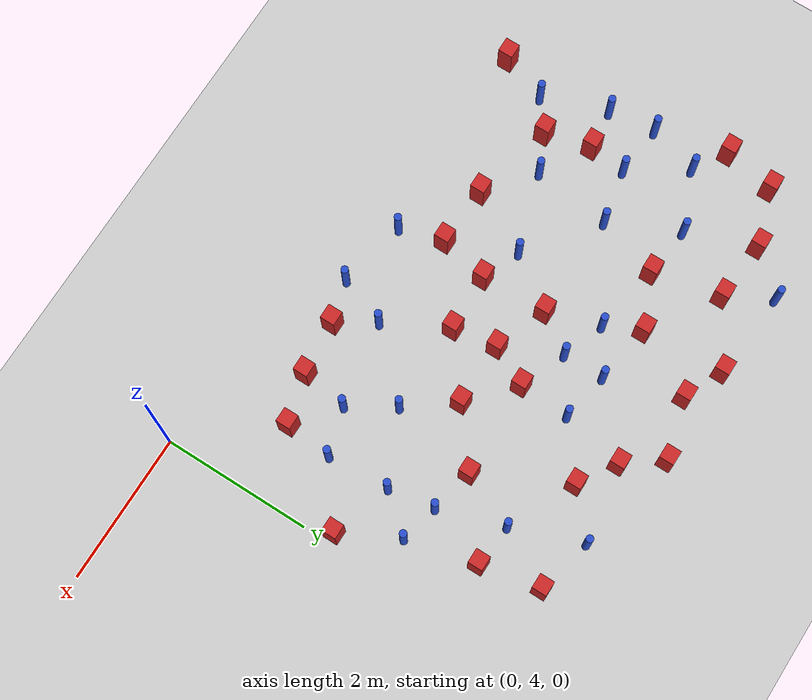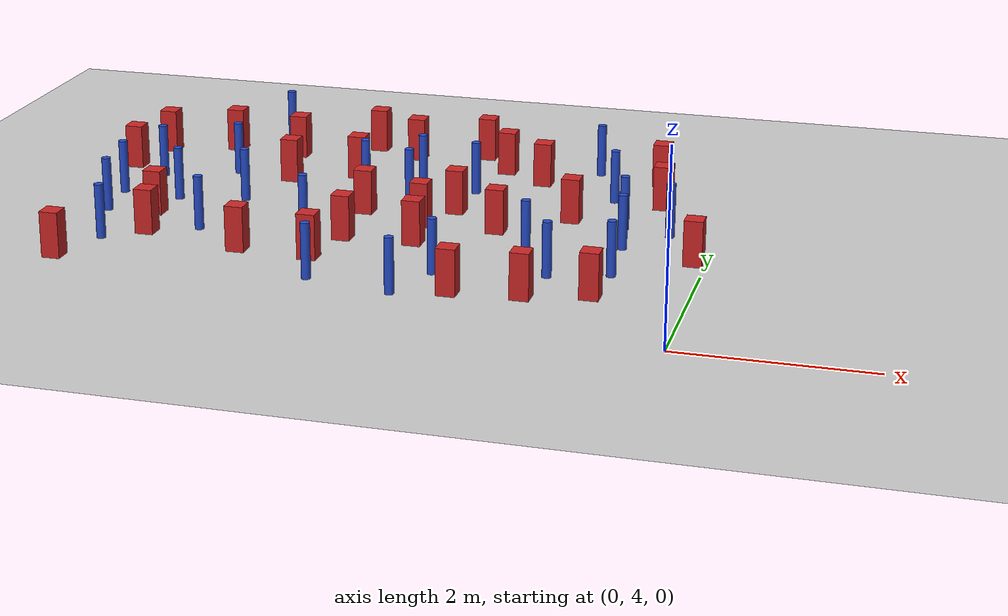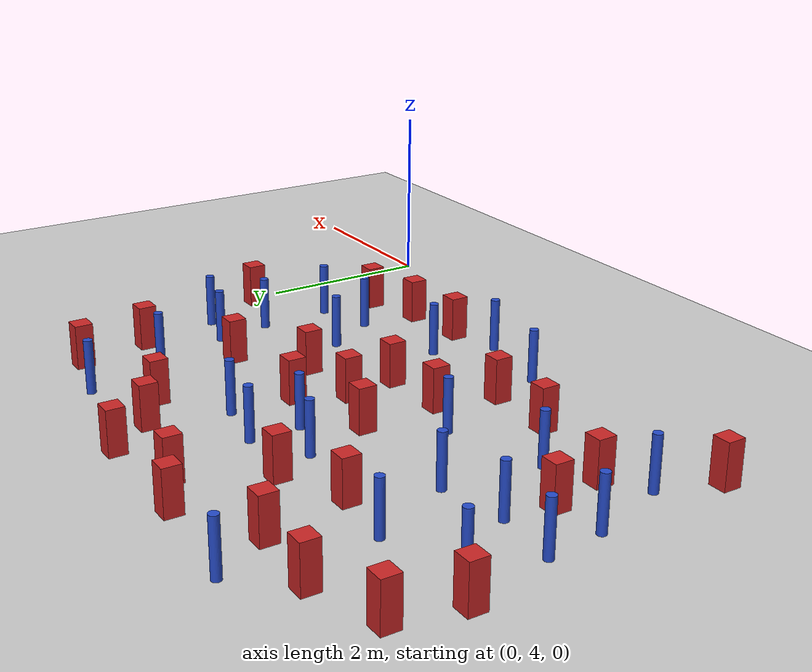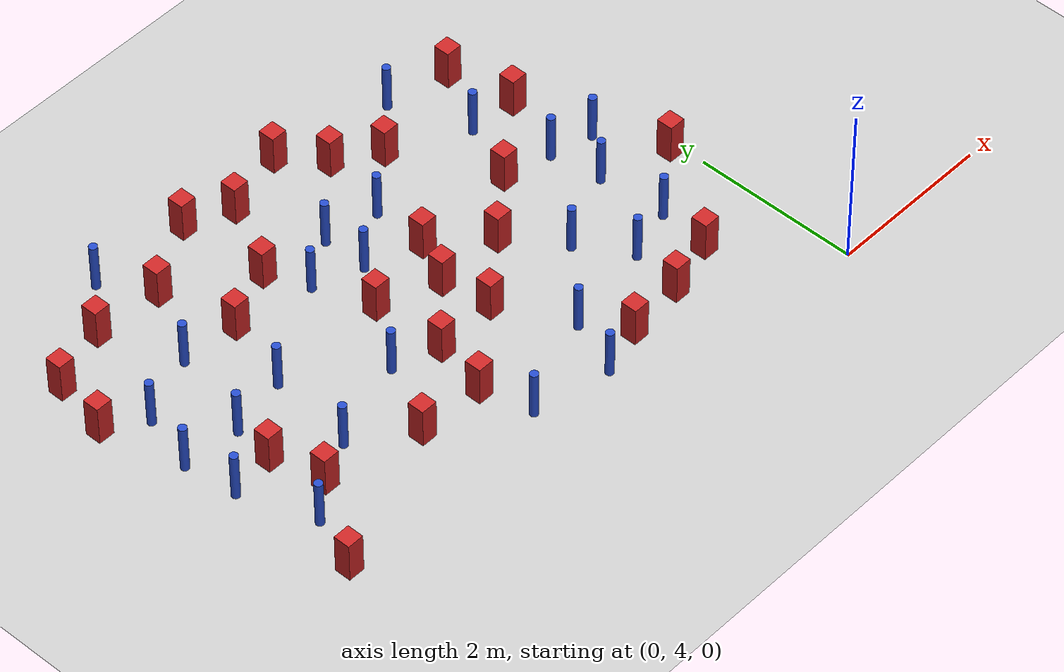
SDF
<sdf version="1.6">
 <world name="default">
  <model name="ground_plane">
   <static>1</static>
   <link name="link">
    <collision name="collision">
     <geometry><plane><normal>0 0 1</normal><size>100 100</size></plane></geometry>
     <surface><friction><ode><mu>100</mu><mu2>50</mu2></ode></friction></surface>
    </collision>
    <visual name="visual">
     <cast_shadows>0</cast_shadows>
     <geometry><plane><normal>0 0 1</normal><size>100 100</size></plane></geometry>
     <material>
      <ambient>1.0 1.0 1.0 1.0</ambient>
      <diffuse>0.8 0.8 0.8 1.0</diffuse>
      <specular>0.01 0.01 0.01 1.000000</specular>
     </material>
    </visual>
   </link>
  </model>
  <model name="square_post_obstacle0">
   <static>true</static>
   <pose>-4.42537233581 9.34307108439 1.91545236811e-07 -7.35059704564e-06 1.12565212e-07 2.39332434364e-05</pose>
   <link name="link">
    <pose>0 0 0.25 0 -0 0</pose>
    <inertial>
     <mass>100</mass>
     <inertia>
      <ixx>0.166667</ixx>
      <ixy>0</ixy>
      <ixz>0</ixz>
      <iyy>0.166667</iyy>
      <iyz>0</iyz>
      <izz>0.166667</izz>
     </inertia>
    </inertial>
    <collision name="collision"><geometry><box><size>.2 .2 .5</size></box></geometry></collision>
    <visual name="visual">
     <geometry><box><size>.2 .2 .5</size></box></geometry>
     <material>
      <script><name>Gazebo/Red</name><uri>file://media/materials/scripts/gazebo.material</uri></script>
     </material>
    </visual>
   </link>
  </model>
  <model name="pole_obstacle17">
   <static>true</static>
   <pose>-1.03280544207 7.2472922459 7.38925637345e-09 -8.47170692799e-08 1.2497676505e-08 -1.74513093018e-07</pose>
   <link name="link">
    <pose>0 0 0.3 0 -0 0</pose>
    <inertial>
     <mass>1</mass>
     <inertia><ixx>0.145833</ixx><ixy>0</ixy><ixz>0</ixz><iyy>0.145833</iyy><iyz>0</iyz><izz>0.125</izz></inertia>
    </inertial>
    <collision name="collision">
     <geometry><cylinder><radius>0.05</radius><length>.6</length></cylinder></geometry>
    </collision>
    <visual name="visual">
     <geometry><cylinder><radius>0.05</radius><length>.6</length></cylinder></geometry>
     <material>
      <script><name>Gazebo/Blue</name><uri>file://media/materials/scripts/gazebo.material</uri></script>
     </material>
    </visual>
   </link>
  </model>
  <model name="square_post_obstacle14">
   <static>true</static>
   <pose>-1.63838827621 7.36169777529 1.91545236811e-07 -7.35059704564e-06 1.12565212e-07 2.39332434364e-05</pose>
   <link name="link">
    <pose>0 0 0.25 0 -0 0</pose>
    <inertial>
     <mass>100</mass>
     <inertia>
      <ixx>0.166667</ixx>
      <ixy>0</ixy>
      <ixz>0</ixz>
      <iyy>0.166667</iyy>
      <iyz>0</iyz>
      <izz>0.166667</izz>
     </inertia>
    </inertial>
    <collision name="collision"><geometry><box><size>.2 .2 .5</size></box></geometry></collision>
    <visual name="visual">
     <geometry><box><size>.2 .2 .5</size></box></geometry>
     <material>
      <script><name>Gazebo/Red</name><uri>file://media/materials/scripts/gazebo.material</uri></script>
     </material>
    </visual>
   </link>
  </model>
  <model name="square_post_obstacle21">
   <static>true</static>
   <pose>-3.09514104872 6.20930146234 1.91545236811e-07 -7.35059704564e-06 1.12565212e-07 2.39332434364e-05</pose>
   <link name="link">
    <pose>0 0 0.25 0 -0 0</pose>
    <inertial>
     <mass>100</mass>
     <inertia>
      <ixx>0.166667</ixx>
      <ixy>0</ixy>
      <ixz>0</ixz>
      <iyy>0.166667</iyy>
      <iyz>0</iyz>
      <izz>0.166667</izz>
     </inertia>
    </inertial>
    <collision name="collision"><geometry><box><size>.2 .2 .5</size></box></geometry></collision>
    <visual name="visual">
     <geometry><box><size>.2 .2 .5</size></box></geometry>
     <material>
      <script><name>Gazebo/Red</name><uri>file://media/materials/scripts/gazebo.material</uri></script>
     </material>
    </visual>
   </link>
  </model>
  <model name="square_post_obstacle23">
   <static>true</static>
   <pose>-3.08481446903 9.33403487141 1.91545236811e-07 -7.35059704564e-06 1.12565212e-07 2.39332434364e-05</pose>
   <link name="link">
    <pose>0 0 0.25 0 -0 0</pose>
    <inertial>
     <mass>100</mass>
     <inertia>
      <ixx>0.166667</ixx>
      <ixy>0</ixy>
      <ixz>0</ixz>
      <iyy>0.166667</iyy>
      <iyz>0</iyz>
      <izz>0.166667</izz>
     </inertia>
    </inertial>
    <collision name="collision"><geometry><box><size>.2 .2 .5</size></box></geometry></collision>
    <visual name="visual">
     <geometry><box><size>.2 .2 .5</size></box></geometry>
     <material>
      <script><name>Gazebo/Red</name><uri>file://media/materials/scripts/gazebo.material</uri></script>
     </material>
    </visual>
   </link>
  </model>
  <model name="pole_obstacle38">
   <static>true</static>
   <pose>-1.86929195292 6.19314190581 7.38925637345e-09 -8.47170692799e-08 1.24976765033e-08 -1.74513093018e-07</pose>
   <link name="link">
    <pose>0 0 0.3 0 -0 0</pose>
    <inertial>
     <mass>1</mass>
     <inertia><ixx>0.145833</ixx><ixy>0</ixy><ixz>0</ixz><iyy>0.145833</iyy><iyz>0</iyz><izz>0.125</izz></inertia>
    </inertial>
    <collision name="collision">
     <geometry><cylinder><radius>0.05</radius><length>.6</length></cylinder></geometry>
    </collision>
    <visual name="visual">
     <geometry><cylinder><radius>0.05</radius><length>.6</length></cylinder></geometry>
     <material>
      <script><name>Gazebo/Blue</name><uri>file://media/materials/scripts/gazebo.material</uri></script>
     </material>
    </visual>
   </link>
  </model>
  <model name="pole_obstacle42">
   <static>true</static>
   <pose>-3.83971023358 4.91311377642 7.38925637345e-09 -8.47170692798e-08 1.24976765033e-08 -1.74513093019e-07</pose>
   <link name="link">
    <pose>0 0 0.3 0 -0 0</pose>
    <inertial>
     <mass>1</mass>
     <inertia><ixx>0.145833</ixx><ixy>0</ixy><ixz>0</ixz><iyy>0.145833</iyy><iyz>0</iyz><izz>0.125</izz></inertia>
    </inertial>
    <collision name="collision">
     <geometry><cylinder><radius>0.05</radius><length>.6</length></cylinder></geometry>
    </collision>
    <visual name="visual">
     <geometry><cylinder><radius>0.05</radius><length>.6</length></cylinder></geometry>
     <material>
      <script><name>Gazebo/Blue</name><uri>file://media/materials/scripts/gazebo.material</uri></script>
     </material>
    </visual>
   </link>
  </model>
  <model name="pole_obstacle44">
   <static>true</static>
   <pose>-2.90251284717 4.72808386331 7.38925637345e-09 -8.47170692798e-08 1.24976765033e-08 -1.74513093019e-07</pose>
   <link name="link">
    <pose>0 0 0.3 0 -0 0</pose>
    <inertial>
     <mass>1</mass>
     <inertia><ixx>0.145833</ixx><ixy>0</ixy><ixz>0</ixz><iyy>0.145833</iyy><iyz>0</iyz><izz>0.125</izz></inertia>
    </inertial>
    <collision name="collision">
     <geometry><cylinder><radius>0.05</radius><length>.6</length></cylinder></geometry>
    </collision>
    <visual name="visual">
     <geometry><cylinder><radius>0.05</radius><length>.6</length></cylinder></geometry>
     <material>
      <script><name>Gazebo/Blue</name><uri>file://media/materials/scripts/gazebo.material</uri></script>
     </material>
    </visual>
   </link>
  </model>
  <model name="pole_obstacle46">
   <static>true</static>
   <pose>-3.54563214074 8.12941647687 7.38925637345e-09 -8.47170692793e-08 1.24976764408e-08 -1.74513093041e-07</pose>
   <link name="link">
    <pose>0 0 0.3 0 -0 0</pose>
    <inertial>
     <mass>1</mass>
     <inertia><ixx>0.145833</ixx><ixy>0</ixy><ixz>0</ixz><iyy>0.145833</iyy><iyz>0</iyz><izz>0.125</izz></inertia>
    </inertial>
    <collision name="collision">
     <geometry><cylinder><radius>0.05</radius><length>.6</length></cylinder></geometry>
    </collision>
    <visual name="visual">
     <geometry><cylinder><radius>0.05</radius><length>.6</length></cylinder></geometry>
     <material>
      <script><name>Gazebo/Blue</name><uri>file://media/materials/scripts/gazebo.material</uri></script>
     </material>
    </visual>
   </link>
  </model>
  <model name="pole_obstacle49">
   <static>true</static>
   <pose>-0.512999969094 7.12655623232 7.38925637345e-09 -8.471706928e-08 1.24976765117e-08 -1.74513093013e-07</pose>
   <link name="link">
    <pose>0 0 0.3 0 -0 0</pose>
    <inertial>
     <mass>1</mass>
     <inertia><ixx>0.145833</ixx><ixy>0</ixy><ixz>0</ixz><iyy>0.145833</iyy><iyz>0</iyz><izz>0.125</izz></inertia>
    </inertial>
    <collision name="collision">
     <geometry><cylinder><radius>0.05</radius><length>.6</length></cylinder></geometry>
    </collision>
    <visual name="visual">
     <geometry><cylinder><radius>0.05</radius><length>.6</length></cylinder></geometry>
     <material>
      <script><name>Gazebo/Blue</name><uri>file://media/materials/scripts/gazebo.material</uri></script>
     </material>
    </visual>
   </link>
  </model>
  <model name="pole_obstacle51">
   <static>true</static>
   <pose>-6.5410241655 7.67725922876 7.38925637345e-09 -8.47170692796e-08 1.24976764786e-08 -1.74513093032e-07</pose>
   <link name="link">
    <pose>0 0 0.3 0 -0 0</pose>
    <inertial>
     <mass>1</mass>
     <inertia><ixx>0.145833</ixx><ixy>0</ixy><ixz>0</ixz><iyy>0.145833</iyy><iyz>0</iyz><izz>0.125</izz></inertia>
    </inertial>
    <collision name="collision">
     <geometry><cylinder><radius>0.05</radius><length>.6</length></cylinder></geometry>
    </collision>
    <visual name="visual">
     <geometry><cylinder><radius>0.05</radius><length>.6</length></cylinder></geometry>
     <material>
      <script><name>Gazebo/Blue</name><uri>file://media/materials/scripts/gazebo.material</uri></script>
     </material>
    </visual>
   </link>
  </model>
  <model name="square_post_obstacle40">
   <static>true</static>
   <pose>-3.86367975901 6.17256029874 1.91545236811e-07 -7.35059704564e-06 1.12565212e-07 2.39332434364e-05</pose>
   <link name="link">
    <pose>0 0 0.25 0 -0 0</pose>
    <inertial>
     <mass>100</mass>
     <inertia>
      <ixx>0.166667</ixx>
      <ixy>0</ixy>
      <ixz>0</ixz>
      <iyy>0.166667</iyy>
      <iyz>0</iyz>
      <izz>0.166667</izz>
     </inertia>
    </inertial>
    <collision name="collision"><geometry><box><size>.2 .2 .5</size></box></geometry></collision>
    <visual name="visual">
     <geometry><box><size>.2 .2 .5</size></box></geometry>
     <material>
      <script><name>Gazebo/Red</name><uri>file://media/materials/scripts/gazebo.material</uri></script>
     </material>
    </visual>
   </link>
  </model>
  <model name="square_post_obstacle49">
   <static>true</static>
   <pose>-2.721855677 8.85385675609 1.91545236811e-07 -7.35059704564e-06 1.12565212e-07 2.39332434364e-05</pose>
   <link name="link">
    <pose>0 0 0.25 0 -0 0</pose>
    <inertial>
     <mass>100</mass>
     <inertia>
      <ixx>0.166667</ixx>
      <ixy>0</ixy>
      <ixz>0</ixz>
      <iyy>0.166667</iyy>
      <iyz>0</iyz>
      <izz>0.166667</izz>
     </inertia>
    </inertial>
    <collision name="collision"><geometry><box><size>.2 .2 .5</size></box></geometry></collision>
    <visual name="visual">
     <geometry><box><size>.2 .2 .5</size></box></geometry>
     <material>
      <script><name>Gazebo/Red</name><uri>file://media/materials/scripts/gazebo.material</uri></script>
     </material>
    </visual>
   </link>
  </model>
  <model name="square_post_obstacle57">
   <static>true</static>
   <pose>-5.06562023933 7.93323465853 1.91545236811e-07 -7.35059704564e-06 1.12565212e-07 2.39332434364e-05</pose>
   <link name="link">
    <pose>0 0 0.25 0 -0 0</pose>
    <inertial>
     <mass>100</mass>
     <inertia>
      <ixx>0.166667</ixx>
      <ixy>0</ixy>
      <ixz>0</ixz>
      <iyy>0.166667</iyy>
      <iyz>0</iyz>
      <izz>0.166667</izz>
     </inertia>
    </inertial>
    <collision name="collision"><geometry><box><size>.2 .2 .5</size></box></geometry></collision>
    <visual name="visual">
     <geometry><box><size>.2 .2 .5</size></box></geometry>
     <material>
      <script><name>Gazebo/Red</name><uri>file://media/materials/scripts/gazebo.material</uri></script>
     </material>
    </visual>
   </link>
  </model>
  <model name="pole_obstacle70">
   <static>true</static>
   <pose>-5.31615816809 7.08995258912 7.38925637345e-09 -8.47170692796e-08 1.24976764786e-08 -1.74513093032e-07</pose>
   <link name="link">
    <pose>0 0 0.3 0 -0 0</pose>
    <inertial>
     <mass>1</mass>
     <inertia><ixx>0.145833</ixx><ixy>0</ixy><ixz>0</ixz><iyy>0.145833</iyy><iyz>0</iyz><izz>0.125</izz></inertia>
    </inertial>
    <collision name="collision">
     <geometry><cylinder><radius>0.05</radius><length>.6</length></cylinder></geometry>
    </collision>
    <visual name="visual">
     <geometry><cylinder><radius>0.05</radius><length>.6</length></cylinder></geometry>
     <material>
      <script><name>Gazebo/Blue</name><uri>file://media/materials/scripts/gazebo.material</uri></script>
     </material>
    </visual>
   </link>
  </model>
  <model name="square_post_obstacle59">
   <static>true</static>
   <pose>-5.27611914222 8.85090359988 1.91545236811e-07 -7.35059704564e-06 1.12565212e-07 2.39332434364e-05</pose>
   <link name="link">
    <pose>0 0 0.25 0 -0 0</pose>
    <inertial>
     <mass>100</mass>
     <inertia>
      <ixx>0.166667</ixx>
      <ixy>0</ixy>
      <ixz>0</ixz>
      <iyy>0.166667</iyy>
      <iyz>0</iyz>
      <izz>0.166667</izz>
     </inertia>
    </inertial>
    <collision name="collision"><geometry><box><size>.2 .2 .5</size></box></geometry></collision>
    <visual name="visual">
     <geometry><box><size>.2 .2 .5</size></box></geometry>
     <material>
      <script><name>Gazebo/Red</name><uri>file://media/materials/scripts/gazebo.material</uri></script>
     </material>
    </visual>
   </link>
  </model>
  <model name="square_post_obstacle62">
   <static>true</static>
   <pose>-0.130804643997 6.36409256207 1.91545236811e-07 -7.35059704564e-06 1.12565212e-07 2.39332434364e-05</pose>
   <link name="link">
    <pose>0 0 0.25 0 -0 0</pose>
    <inertial>
     <mass>100</mass>
     <inertia>
      <ixx>0.166667</ixx>
      <ixy>0</ixy>
      <ixz>0</ixz>
      <iyy>0.166667</iyy>
      <iyz>0</iyz>
      <izz>0.166667</izz>
     </inertia>
    </inertial>
    <collision name="collision"><geometry><box><size>.2 .2 .5</size></box></geometry></collision>
    <visual name="visual">
     <geometry><box><size>.2 .2 .5</size></box></geometry>
     <material>
      <script><name>Gazebo/Red</name><uri>file://media/materials/scripts/gazebo.material</uri></script>
     </material>
    </visual>
   </link>
  </model>
  <model name="pole_obstacle76">
   <static>true</static>
   <pose>-6.35180279559 5.49449665691 7.38925637345e-09 -8.47170692796e-08 1.24976764786e-08 -1.74513093032e-07</pose>
   <link name="link">
    <pose>0 0 0.3 0 -0 0</pose>
    <inertial>
     <mass>1</mass>
     <inertia><ixx>0.145833</ixx><ixy>0</ixy><ixz>0</ixz><iyy>0.145833</iyy><iyz>0</iyz><izz>0.125</izz></inertia>
    </inertial>
    <collision name="collision">
     <geometry><cylinder><radius>0.05</radius><length>.6</length></cylinder></geometry>
    </collision>
    <visual name="visual">
     <geometry><cylinder><radius>0.05</radius><length>.6</length></cylinder></geometry>
     <material>
      <script><name>Gazebo/Blue</name><uri>file://media/materials/scripts/gazebo.material</uri></script>
     </material>
    </visual>
   </link>
  </model>
  <model name="pole_obstacle87">
   <static>true</static>
   <pose>-5.74234168032 8.0087339575 7.38925637345e-09 -8.47170692797e-08 1.24976764908e-08 -1.74513093024e-07</pose>
   <link name="link">
    <pose>0 0 0.3 0 -0 0</pose>
    <inertial>
     <mass>1</mass>
     <inertia><ixx>0.145833</ixx><ixy>0</ixy><ixz>0</ixz><iyy>0.145833</iyy><iyz>0</iyz><izz>0.125</izz></inertia>
    </inertial>
    <collision name="collision">
     <geometry><cylinder><radius>0.05</radius><length>.6</length></cylinder></geometry>
    </collision>
    <visual name="visual">
     <geometry><cylinder><radius>0.05</radius><length>.6</length></cylinder></geometry>
     <material>
      <script><name>Gazebo/Blue</name><uri>file://media/materials/scripts/gazebo.material</uri></script>
     </material>
    </visual>
   </link>
  </model>
  <model name="pole_obstacle88">
   <static>true</static>
   <pose>-4.38326507302 6.38238014235 7.38925637345e-09 -8.47170692796e-08 1.24976764786e-08 -1.74513093032e-07</pose>
   <link name="link">
    <pose>0 0 0.3 0 -0 0</pose>
    <inertial>
     <mass>1</mass>
     <inertia><ixx>0.145833</ixx><ixy>0</ixy><ixz>0</ixz><iyy>0.145833</iyy><iyz>0</iyz><izz>0.125</izz></inertia>
    </inertial>
    <collision name="collision">
     <geometry><cylinder><radius>0.05</radius><length>.6</length></cylinder></geometry>
    </collision>
    <visual name="visual">
     <geometry><cylinder><radius>0.05</radius><length>.6</length></cylinder></geometry>
     <material>
      <script><name>Gazebo/Blue</name><uri>file://media/materials/scripts/gazebo.material</uri></script>
     </material>
    </visual>
   </link>
  </model>
  <model name="square_post_obstacle76">
   <static>true</static>
   <pose>-6.996028172 7.95770468546 1.91545236811e-07 -7.35059704564e-06 1.12565212e-07 2.39332434364e-05</pose>
   <link name="link">
    <pose>0 0 0.25 0 -0 0</pose>
    <inertial>
     <mass>100</mass>
     <inertia>
      <ixx>0.166667</ixx>
      <ixy>0</ixy>
      <ixz>0</ixz>
      <iyy>0.166667</iyy>
      <iyz>0</iyz>
      <izz>0.166667</izz>
     </inertia>
    </inertial>
    <collision name="collision"><geometry><box><size>.2 .2 .5</size></box></geometry></collision>
    <visual name="visual">
     <geometry><box><size>.2 .2 .5</size></box></geometry>
     <material>
      <script><name>Gazebo/Red</name><uri>file://media/materials/scripts/gazebo.material</uri></script>
     </material>
    </visual>
   </link>
  </model>
  <model name="square_post_obstacle80">
   <static>true</static>
   <pose>-0.752348343231 8.05369143228 1.91545236811e-07 -7.35059704564e-06 1.12565212e-07 2.39332434364e-05</pose>
   <link name="link">
    <pose>0 0 0.25 0 -0 0</pose>
    <inertial>
     <mass>100</mass>
     <inertia>
      <ixx>0.166667</ixx>
      <ixy>0</ixy>
      <ixz>0</ixz>
      <iyy>0.166667</iyy>
      <iyz>0</iyz>
      <izz>0.166667</izz>
     </inertia>
    </inertial>
    <collision name="collision"><geometry><box><size>.2 .2 .5</size></box></geometry></collision>
    <visual name="visual">
     <geometry><box><size>.2 .2 .5</size></box></geometry>
     <material>
      <script><name>Gazebo/Red</name><uri>file://media/materials/scripts/gazebo.material</uri></script>
     </material>
    </visual>
   </link>
  </model>
  <model name="square_post_obstacle82">
   <static>true</static>
   <pose>-6.5917989796 4.8559910626 1.91545236811e-07 -7.35059704564e-06 1.12565212e-07 2.39332434364e-05</pose>
   <link name="link">
    <pose>0 0 0.25 0 -0 0</pose>
    <inertial>
     <mass>100</mass>
     <inertia>
      <ixx>0.166667</ixx>
      <ixy>0</ixy>
      <ixz>0</ixz>
      <iyy>0.166667</iyy>
      <iyz>0</iyz>
      <izz>0.166667</izz>
     </inertia>
    </inertial>
    <collision name="collision"><geometry><box><size>.2 .2 .5</size></box></geometry></collision>
    <visual name="visual">
     <geometry><box><size>.2 .2 .5</size></box></geometry>
     <material>
      <script><name>Gazebo/Red</name><uri>file://media/materials/scripts/gazebo.material</uri></script>
     </material>
    </visual>
   </link>
  </model>
  <model name="square_post_obstacle83">
   <static>true</static>
   <pose>-3.8986490618 7.06341154303 1.91545236811e-07 -7.35059704564e-06 1.12565212e-07 2.39332434364e-05</pose>
   <link name="link">
    <pose>0 0 0.25 0 -0 0</pose>
    <inertial>
     <mass>100</mass>
     <inertia>
      <ixx>0.166667</ixx>
      <ixy>0</ixy>
      <ixz>0</ixz>
      <iyy>0.166667</iyy>
      <iyz>0</iyz>
      <izz>0.166667</izz>
     </inertia>
    </inertial>
    <collision name="collision"><geometry><box><size>.2 .2 .5</size></box></geometry></collision>
    <visual name="visual">
     <geometry><box><size>.2 .2 .5</size></box></geometry>
     <material>
      <script><name>Gazebo/Red</name><uri>file://media/materials/scripts/gazebo.material</uri></script>
     </material>
    </visual>
   </link>
  </model>
  <model name="pole_obstacle92">
   <static>true</static>
   <pose>-5.4490186674 6.03763071061 7.38925637345e-09 -8.47170692796e-08 1.24976764786e-08 -1.74513093032e-07</pose>
   <link name="link">
    <pose>0 0 0.3 0 -0 0</pose>
    <inertial>
     <mass>1</mass>
     <inertia><ixx>0.145833</ixx><ixy>0</ixy><ixz>0</ixz><iyy>0.145833</iyy><iyz>0</iyz><izz>0.125</izz></inertia>
    </inertial>
    <collision name="collision">
     <geometry><cylinder><radius>0.05</radius><length>.6</length></cylinder></geometry>
    </collision>
    <visual name="visual">
     <geometry><cylinder><radius>0.05</radius><length>.6</length></cylinder></geometry>
     <material>
      <script><name>Gazebo/Blue</name><uri>file://media/materials/scripts/gazebo.material</uri></script>
     </material>
    </visual>
   </link>
  </model>
  <model name="pole_obstacle94">
   <static>true</static>
   <pose>-2.65128972737 5.38689296455 7.38925637345e-09 -8.47170692798e-08 1.24976765033e-08 -1.74513093019e-07</pose>
   <link name="link">
    <pose>0 0 0.3 0 -0 0</pose>
    <inertial>
     <mass>1</mass>
     <inertia><ixx>0.145833</ixx><ixy>0</ixy><ixz>0</ixz><iyy>0.145833</iyy><iyz>0</iyz><izz>0.125</izz></inertia>
    </inertial>
    <collision name="collision">
     <geometry><cylinder><radius>0.05</radius><length>.6</length></cylinder></geometry>
    </collision>
    <visual name="visual">
     <geometry><cylinder><radius>0.05</radius><length>.6</length></cylinder></geometry>
     <material>
      <script><name>Gazebo/Blue</name><uri>file://media/materials/scripts/gazebo.material</uri></script>
     </material>
    </visual>
   </link>
  </model>
  <model name="square_post_obstacle87">
   <static>true</static>
   <pose>-3.18597300844 6.80134699992 1.91545236811e-07 -7.35059704564e-06 1.12565212e-07 2.39332434364e-05</pose>
   <link name="link">
    <pose>0 0 0.25 0 -0 0</pose>
    <inertial>
     <mass>100</mass>
     <inertia>
      <ixx>0.166667</ixx>
      <ixy>0</ixy>
      <ixz>0</ixz>
      <iyy>0.166667</iyy>
      <iyz>0</iyz>
      <izz>0.166667</izz>
     </inertia>
    </inertial>
    <collision name="collision"><geometry><box><size>.2 .2 .5</size></box></geometry></collision>
    <visual name="visual">
     <geometry><box><size>.2 .2 .5</size></box></geometry>
     <material>
      <script><name>Gazebo/Red</name><uri>file://media/materials/scripts/gazebo.material</uri></script>
     </material>
    </visual>
   </link>
  </model>
  <model name="pole_obstacle95">
   <static>true</static>
   <pose>-0.879925239615 5.79441441476 7.38925637345e-09 -8.471706928e-08 1.24976765086e-08 -1.74513093015e-07</pose>
   <link name="link">
    <pose>0 0 0.3 0 -0 0</pose>
    <inertial>
     <mass>1</mass>
     <inertia><ixx>0.145833</ixx><ixy>0</ixy><ixz>0</ixz><iyy>0.145833</iyy><iyz>0</iyz><izz>0.125</izz></inertia>
    </inertial>
    <collision name="collision">
     <geometry><cylinder><radius>0.05</radius><length>.6</length></cylinder></geometry>
    </collision>
    <visual name="visual">
     <geometry><cylinder><radius>0.05</radius><length>.6</length></cylinder></geometry>
     <material>
      <script><name>Gazebo/Blue</name><uri>file://media/materials/scripts/gazebo.material</uri></script>
     </material>
    </visual>
   </link>
  </model>
  <model name="square_post_obstacle90">
   <static>true</static>
   <pose>-0.956719167307 5.1549071017 1.91545236811e-07 -7.35059704564e-06 1.12565212e-07 2.39332434364e-05</pose>
   <link name="link">
    <pose>0 0 0.25 0 -0 0</pose>
    <inertial>
     <mass>100</mass>
     <inertia>
      <ixx>0.166667</ixx>
      <ixy>0</ixy>
      <ixz>0</ixz>
      <iyy>0.166667</iyy>
      <iyz>0</iyz>
      <izz>0.166667</izz>
     </inertia>
    </inertial>
    <collision name="collision"><geometry><box><size>.2 .2 .5</size></box></geometry></collision>
    <visual name="visual">
     <geometry><box><size>.2 .2 .5</size></box></geometry>
     <material>
      <script><name>Gazebo/Red</name><uri>file://media/materials/scripts/gazebo.material</uri></script>
     </material>
    </visual>
   </link>
  </model>
  <model name="square_post_obstacle91">
   <static>true</static>
   <pose>-0.907562092377 8.85625605651 1.91545236811e-07 -7.35059704564e-06 1.12565212e-07 2.39332434364e-05</pose>
   <link name="link">
    <pose>0 0 0.25 0 -0 0</pose>
    <inertial>
     <mass>100</mass>
     <inertia>
      <ixx>0.166667</ixx>
      <ixy>0</ixy>
      <ixz>0</ixz>
      <iyy>0.166667</iyy>
      <iyz>0</iyz>
      <izz>0.166667</izz>
     </inertia>
    </inertial>
    <collision name="collision"><geometry><box><size>.2 .2 .5</size></box></geometry></collision>
    <visual name="visual">
     <geometry><box><size>.2 .2 .5</size></box></geometry>
     <material>
      <script><name>Gazebo/Red</name><uri>file://media/materials/scripts/gazebo.material</uri></script>
     </material>
    </visual>
   </link>
  </model>
  <model name="square_post_obstacle95">
   <static>true</static>
   <pose>-6.09542338812 8.90953433169 1.91545236811e-07 -7.35059704564e-06 1.12565212e-07 2.39332434364e-05</pose>
   <link name="link">
    <pose>0 0 0.25 0 -0 0</pose>
    <inertial>
     <mass>100</mass>
     <inertia>
      <ixx>0.166667</ixx>
      <ixy>0</ixy>
      <ixz>0</ixz>
      <iyy>0.166667</iyy>
      <iyz>0</iyz>
      <izz>0.166667</izz>
     </inertia>
    </inertial>
    <collision name="collision"><geometry><box><size>.2 .2 .5</size></box></geometry></collision>
    <visual name="visual">
     <geometry><box><size>.2 .2 .5</size></box></geometry>
     <material>
      <script><name>Gazebo/Red</name><uri>file://media/materials/scripts/gazebo.material</uri></script>
     </material>
    </visual>
   </link>
  </model>
  <model name="pole_obstacle102">
   <static>true</static>
   <pose>-6.74154418757 6.99983110497 7.38925637345e-09 -8.47170692796e-08 1.24976764786e-08 -1.74513093032e-07</pose>
   <link name="link">
    <pose>0 0 0.3 0 -0 0</pose>
    <inertial>
     <mass>1</mass>
     <inertia><ixx>0.145833</ixx><ixy>0</ixy><ixz>0</ixz><iyy>0.145833</iyy><iyz>0</iyz><izz>0.125</izz></inertia>
    </inertial>
    <collision name="collision">
     <geometry><cylinder><radius>0.05</radius><length>.6</length></cylinder></geometry>
    </collision>
    <visual name="visual">
     <geometry><cylinder><radius>0.05</radius><length>.6</length></cylinder></geometry>
     <material>
      <script><name>Gazebo/Blue</name><uri>file://media/materials/scripts/gazebo.material</uri></script>
     </material>
    </visual>
   </link>
  </model>
  <model name="square_post_obstacle104">
   <static>true</static>
   <pose>-2.22370816298 8.53568527933 1.91545236811e-07 -7.35059704564e-06 1.12565212e-07 2.39332434364e-05</pose>
   <link name="link">
    <pose>0 0 0.25 0 -0 0</pose>
    <inertial>
     <mass>100</mass>
     <inertia>
      <ixx>0.166667</ixx>
      <ixy>0</ixy>
      <ixz>0</ixz>
      <iyy>0.166667</iyy>
      <iyz>0</iyz>
      <izz>0.166667</izz>
     </inertia>
    </inertial>
    <collision name="collision"><geometry><box><size>.2 .2 .5</size></box></geometry></collision>
    <visual name="visual">
     <geometry><box><size>.2 .2 .5</size></box></geometry>
     <material>
      <script><name>Gazebo/Red</name><uri>file://media/materials/scripts/gazebo.material</uri></script>
     </material>
    </visual>
   </link>
  </model>
  <model name="square_post_obstacle105">
   <static>true</static>
   <pose>-1.61569237653 4.96791428554 1.91545236811e-07 -7.35059704564e-06 1.12565212e-07 2.39332434364e-05</pose>
   <link name="link">
    <pose>0 0 0.25 0 -0 0</pose>
    <inertial>
     <mass>100</mass>
     <inertia>
      <ixx>0.166667</ixx>
      <ixy>0</ixy>
      <ixz>0</ixz>
      <iyy>0.166667</iyy>
      <iyz>0</iyz>
      <izz>0.166667</izz>
     </inertia>
    </inertial>
    <collision name="collision"><geometry><box><size>.2 .2 .5</size></box></geometry></collision>
    <visual name="visual">
     <geometry><box><size>.2 .2 .5</size></box></geometry>
     <material>
      <script><name>Gazebo/Red</name><uri>file://media/materials/scripts/gazebo.material</uri></script>
     </material>
    </visual>
   </link>
  </model>
  <model name="square_post_obstacle112">
   <static>true</static>
   <pose>-2.34164089278 6.80106602701 1.91545236811e-07 -7.35059704564e-06 1.12565212e-07 2.39332434364e-05</pose>
   <link name="link">
    <pose>0 0 0.25 0 -0 0</pose>
    <inertial>
     <mass>100</mass>
     <inertia>
      <ixx>0.166667</ixx>
      <ixy>0</ixy>
      <ixz>0</ixz>
      <iyy>0.166667</iyy>
      <iyz>0</iyz>
      <izz>0.166667</izz>
     </inertia>
    </inertial>
    <collision name="collision"><geometry><box><size>.2 .2 .5</size></box></geometry></collision>
    <visual name="visual">
     <geometry><box><size>.2 .2 .5</size></box></geometry>
     <material>
      <script><name>Gazebo/Red</name><uri>file://media/materials/scripts/gazebo.material</uri></script>
     </material>
    </visual>
   </link>
  </model>
  <model name="pole_obstacle126">
   <static>true</static>
   <pose>-4.11970724171 7.77674104722 7.38925637345e-09 -8.47170692796e-08 1.24976764786e-08 -1.74513093032e-07</pose>
   <link name="link">
    <pose>0 0 0.3 0 -0 0</pose>
    <inertial>
     <mass>1</mass>
     <inertia><ixx>0.145833</ixx><ixy>0</ixy><ixz>0</ixz><iyy>0.145833</iyy><iyz>0</iyz><izz>0.125</izz></inertia>
    </inertial>
    <collision name="collision">
     <geometry><cylinder><radius>0.05</radius><length>.6</length></cylinder></geometry>
    </collision>
    <visual name="visual">
     <geometry><cylinder><radius>0.05</radius><length>.6</length></cylinder></geometry>
     <material>
      <script><name>Gazebo/Blue</name><uri>file://media/materials/scripts/gazebo.material</uri></script>
     </material>
    </visual>
   </link>
  </model>
  <model name="square_post_obstacle132">
   <static>true</static>
   <pose>-6.8508579768 8.64848479356 1.91545236811e-07 -7.35059704564e-06 1.12565212e-07 2.39332434364e-05</pose>
   <link name="link">
    <pose>0 0 0.25 0 -0 0</pose>
    <inertial>
     <mass>100</mass>
     <inertia>
      <ixx>0.166667</ixx>
      <ixy>0</ixy>
      <ixz>0</ixz>
      <iyy>0.166667</iyy>
      <iyz>0</iyz>
      <izz>0.166667</izz>
     </inertia>
    </inertial>
    <collision name="collision"><geometry><box><size>.2 .2 .5</size></box></geometry></collision>
    <visual name="visual">
     <geometry><box><size>.2 .2 .5</size></box></geometry>
     <material>
      <script><name>Gazebo/Red</name><uri>file://media/materials/scripts/gazebo.material</uri></script>
     </material>
    </visual>
   </link>
  </model>
  <model name="pole_obstacle140">
   <static>true</static>
   <pose>-6.04865787776 6.9366899794 7.38925637345e-09 -8.47170692796e-08 1.24976764786e-08 -1.74513093032e-07</pose>
   <link name="link">
    <pose>0 0 0.3 0 -0 0</pose>
    <inertial>
     <mass>1</mass>
     <inertia><ixx>0.145833</ixx><ixy>0</ixy><ixz>0</ixz><iyy>0.145833</iyy><iyz>0</iyz><izz>0.125</izz></inertia>
    </inertial>
    <collision name="collision">
     <geometry><cylinder><radius>0.05</radius><length>.6</length></cylinder></geometry>
    </collision>
    <visual name="visual">
     <geometry><cylinder><radius>0.05</radius><length>.6</length></cylinder></geometry>
     <material>
      <script><name>Gazebo/Blue</name><uri>file://media/materials/scripts/gazebo.material</uri></script>
     </material>
    </visual>
   </link>
  </model>
  <model name="square_post_obstacle138">
   <static>true</static>
   <pose>-2.92915984897 7.31871479456 1.91545236811e-07 -7.35059704564e-06 1.12565212e-07 2.39332434364e-05</pose>
   <link name="link">
    <pose>0 0 0.25 0 -0 0</pose>
    <inertial>
     <mass>100</mass>
     <inertia>
      <ixx>0.166667</ixx>
      <ixy>0</ixy>
      <ixz>0</ixz>
      <iyy>0.166667</iyy>
      <iyz>0</iyz>
      <izz>0.166667</izz>
     </inertia>
    </inertial>
    <collision name="collision"><geometry><box><size>.2 .2 .5</size></box></geometry></collision>
    <visual name="visual">
     <geometry><box><size>.2 .2 .5</size></box></geometry>
     <material>
      <script><name>Gazebo/Red</name><uri>file://media/materials/scripts/gazebo.material</uri></script>
     </material>
    </visual>
   </link>
  </model>
  <model name="pole_obstacle143">
   <static>true</static>
   <pose>-2.88846513414 8.0117945067 7.38925637345e-09 -8.47170692799e-08 1.24976765028e-08 -1.74513093018e-07</pose>
   <link name="link">
    <pose>0 0 0.3 0 -0 0</pose>
    <inertial>
     <mass>1</mass>
     <inertia><ixx>0.145833</ixx><ixy>0</ixy><ixz>0</ixz><iyy>0.145833</iyy><iyz>0</iyz><izz>0.125</izz></inertia>
    </inertial>
    <collision name="collision">
     <geometry><cylinder><radius>0.05</radius><length>.6</length></cylinder></geometry>
    </collision>
    <visual name="visual">
     <geometry><cylinder><radius>0.05</radius><length>.6</length></cylinder></geometry>
     <material>
      <script><name>Gazebo/Blue</name><uri>file://media/materials/scripts/gazebo.material</uri></script>
     </material>
    </visual>
   </link>
  </model>
  <model name="pole_obstacle146">
   <static>true</static>
   <pose>-1.31251473957 8.11333497526 7.38925637345e-09 -8.47170692798e-08 1.24976764881e-08 -1.74513093027e-07</pose>
   <link name="link">
    <pose>0 0 0.3 0 -0 0</pose>
    <inertial>
     <mass>1</mass>
     <inertia><ixx>0.145833</ixx><ixy>0</ixy><ixz>0</ixz><iyy>0.145833</iyy><iyz>0</iyz><izz>0.125</izz></inertia>
    </inertial>
    <collision name="collision">
     <geometry><cylinder><radius>0.05</radius><length>.6</length></cylinder></geometry>
    </collision>
    <visual name="visual">
     <geometry><cylinder><radius>0.05</radius><length>.6</length></cylinder></geometry>
     <material>
      <script><name>Gazebo/Blue</name><uri>file://media/materials/scripts/gazebo.material</uri></script>
     </material>
    </visual>
   </link>
  </model>
  <model name="pole_obstacle152">
   <static>true</static>
   <pose>-5.5980302016 9.44710012789 7.38925637345e-09 -8.471706928e-08 1.24976765081e-08 -1.74513093015e-07</pose>
   <link name="link">
    <pose>0 0 0.3 0 -0 0</pose>
    <inertial>
     <mass>1</mass>
     <inertia><ixx>0.145833</ixx><ixy>0</ixy><ixz>0</ixz><iyy>0.145833</iyy><iyz>0</iyz><izz>0.125</izz></inertia>
    </inertial>
    <collision name="collision">
     <geometry><cylinder><radius>0.05</radius><length>.6</length></cylinder></geometry>
    </collision>
    <visual name="visual">
     <geometry><cylinder><radius>0.05</radius><length>.6</length></cylinder></geometry>
     <material>
      <script><name>Gazebo/Blue</name><uri>file://media/materials/scripts/gazebo.material</uri></script>
     </material>
    </visual>
   </link>
  </model>
  <model name="square_post_obstacle147">
   <static>true</static>
   <pose>-4.81832206668 5.53756485698 1.91545236811e-07 -7.35059704564e-06 1.12565212e-07 2.39332434364e-05</pose>
   <link name="link">
    <pose>0 0 0.25 0 -0 0</pose>
    <inertial>
     <mass>100</mass>
     <inertia>
      <ixx>0.166667</ixx>
      <ixy>0</ixy>
      <ixz>0</ixz>
      <iyy>0.166667</iyy>
      <iyz>0</iyz>
      <izz>0.166667</izz>
     </inertia>
    </inertial>
    <collision name="collision"><geometry><box><size>.2 .2 .5</size></box></geometry></collision>
    <visual name="visual">
     <geometry><box><size>.2 .2 .5</size></box></geometry>
     <material>
      <script><name>Gazebo/Red</name><uri>file://media/materials/scripts/gazebo.material</uri></script>
     </material>
    </visual>
   </link>
  </model>
  <model name="pole_obstacle165">
   <static>true</static>
   <pose>-6.65986455263 6.36419875757 7.38925637345e-09 -8.47170692796e-08 1.24976764786e-08 -1.74513093032e-07</pose>
   <link name="link">
    <pose>0 0 0.3 0 -0 0</pose>
    <inertial>
     <mass>1</mass>
     <inertia><ixx>0.145833</ixx><ixy>0</ixy><ixz>0</ixz><iyy>0.145833</iyy><iyz>0</iyz><izz>0.125</izz></inertia>
    </inertial>
    <collision name="collision">
     <geometry><cylinder><radius>0.05</radius><length>.6</length></cylinder></geometry>
    </collision>
    <visual name="visual">
     <geometry><cylinder><radius>0.05</radius><length>.6</length></cylinder></geometry>
     <material>
      <script><name>Gazebo/Blue</name><uri>file://media/materials/scripts/gazebo.material</uri></script>
     </material>
    </visual>
   </link>
  </model>
  <model name="square_post_obstacle170">
   <static>true</static>
   <pose>-6.11617356047 6.42526317171 1.91545236811e-07 -7.35059704564e-06 1.12565212e-07 2.39332434364e-05</pose>
   <link name="link">
    <pose>0 0 0.25 0 -0 0</pose>
    <inertial>
     <mass>100</mass>
     <inertia>
      <ixx>0.166667</ixx>
      <ixy>0</ixy>
      <ixz>0</ixz>
      <iyy>0.166667</iyy>
      <iyz>0</iyz>
      <izz>0.166667</izz>
     </inertia>
    </inertial>
    <collision name="collision"><geometry><box><size>.2 .2 .5</size></box></geometry></collision>
    <visual name="visual">
     <geometry><box><size>.2 .2 .5</size></box></geometry>
     <material>
      <script><name>Gazebo/Red</name><uri>file://media/materials/scripts/gazebo.material</uri></script>
     </material>
    </visual>
   </link>
  </model>
  <model name="pole_obstacle172">
   <static>true</static>
   <pose>-0.931915506598 6.62699122638 7.38925637345e-09 -8.471706928e-08 1.24976765086e-08 -1.74513093015e-07</pose>
   <link name="link">
    <pose>0 0 0.3 0 -0 0</pose>
    <inertial>
     <mass>1</mass>
     <inertia><ixx>0.145833</ixx><ixy>0</ixy><ixz>0</ixz><iyy>0.145833</iyy><iyz>0</iyz><izz>0.125</izz></inertia>
    </inertial>
    <collision name="collision">
     <geometry><cylinder><radius>0.05</radius><length>.6</length></cylinder></geometry>
    </collision>
    <visual name="visual">
     <geometry><cylinder><radius>0.05</radius><length>.6</length></cylinder></geometry>
     <material>
      <script><name>Gazebo/Blue</name><uri>file://media/materials/scripts/gazebo.material</uri></script>
     </material>
    </visual>
   </link>
  </model>
  <model name="square_post_obstacle175">
   <static>true</static>
   <pose>-2.345498346 4.88798246004 1.91545236811e-07 -7.35059704564e-06 1.12565212e-07 2.39332434364e-05</pose>
   <link name="link">
    <pose>0 0 0.25 0 -0 0</pose>
    <inertial>
     <mass>100</mass>
     <inertia>
      <ixx>0.166667</ixx>
      <ixy>0</ixy>
      <ixz>0</ixz>
      <iyy>0.166667</iyy>
      <iyz>0</iyz>
      <izz>0.166667</izz>
     </inertia>
    </inertial>
    <collision name="collision"><geometry><box><size>.2 .2 .5</size></box></geometry></collision>
    <visual name="visual">
     <geometry><box><size>.2 .2 .5</size></box></geometry>
     <material>
      <script><name>Gazebo/Red</name><uri>file://media/materials/scripts/gazebo.material</uri></script>
     </material>
    </visual>
   </link>
  </model>
  <model name="pole_obstacle181">
   <static>true</static>
   <pose>-1.50502550626 5.60089270343 7.38925637345e-09 -8.47170692799e-08 1.24976765033e-08 -1.74513093018e-07</pose>
   <link name="link">
    <pose>0 0 0.3 0 -0 0</pose>
    <inertial>
     <mass>1</mass>
     <inertia><ixx>0.145833</ixx><ixy>0</ixy><ixz>0</ixz><iyy>0.145833</iyy><iyz>0</iyz><izz>0.125</izz></inertia>
    </inertial>
    <collision name="collision">
     <geometry><cylinder><radius>0.05</radius><length>.6</length></cylinder></geometry>
    </collision>
    <visual name="visual">
     <geometry><cylinder><radius>0.05</radius><length>.6</length></cylinder></geometry>
     <material>
      <script><name>Gazebo/Blue</name><uri>file://media/materials/scripts/gazebo.material</uri></script>
     </material>
    </visual>
   </link>
  </model>
  <model name="square_post_obstacle197">
   <static>true</static>
   <pose>-4.35519684735 8.24470314045 1.91545236811e-07 -7.35059704564e-06 1.12565212e-07 2.39332434364e-05</pose>
   <link name="link">
    <pose>0 0 0.25 0 -0 0</pose>
    <inertial>
     <mass>100</mass>
     <inertia>
      <ixx>0.166667</ixx>
      <ixy>0</ixy>
      <ixz>0</ixz>
      <iyy>0.166667</iyy>
      <iyz>0</iyz>
      <izz>0.166667</izz>
     </inertia>
    </inertial>
    <collision name="collision"><geometry><box><size>.2 .2 .5</size></box></geometry></collision>
    <visual name="visual">
     <geometry><box><size>.2 .2 .5</size></box></geometry>
     <material>
      <script><name>Gazebo/Red</name><uri>file://media/materials/scripts/gazebo.material</uri></script>
     </material>
    </visual>
   </link>
  </model>
  <model name="square_post_obstacle199">
   <static>true</static>
   <pose>-4.01699372767 5.50356237505 1.91545236811e-07 -7.35059704564e-06 1.12565212e-07 2.39332434364e-05</pose>
   <link name="link">
    <pose>0 0 0.25 0 -0 0</pose>
    <inertial>
     <mass>100</mass>
     <inertia>
      <ixx>0.166667</ixx>
      <ixy>0</ixy>
      <ixz>0</ixz>
      <iyy>0.166667</iyy>
      <iyz>0</iyz>
      <izz>0.166667</izz>
     </inertia>
    </inertial>
    <collision name="collision"><geometry><box><size>.2 .2 .5</size></box></geometry></collision>
    <visual name="visual">
     <geometry><box><size>.2 .2 .5</size></box></geometry>
     <material>
      <script><name>Gazebo/Red</name><uri>file://media/materials/scripts/gazebo.material</uri></script>
     </material>
    </visual>
   </link>
  </model>
  <model name="square_post_obstacle203">
   <static>true</static>
   <pose>-3.88790345366 9.10485718662 1.91545236811e-07 -7.35059704564e-06 1.12565212e-07 2.39332434364e-05</pose>
   <link name="link">
    <pose>0 0 0.25 0 -0 0</pose>
    <inertial>
     <mass>100</mass>
     <inertia>
      <ixx>0.166667</ixx>
      <ixy>0</ixy>
      <ixz>0</ixz>
      <iyy>0.166667</iyy>
      <iyz>0</iyz>
      <izz>0.166667</izz>
     </inertia>
    </inertial>
    <collision name="collision"><geometry><box><size>.2 .2 .5</size></box></geometry></collision>
    <visual name="visual">
     <geometry><box><size>.2 .2 .5</size></box></geometry>
     <material>
      <script><name>Gazebo/Red</name><uri>file://media/materials/scripts/gazebo.material</uri></script>
     </material>
    </visual>
   </link>
  </model>
  <model name="pole_obstacle197">
   <static>true</static>
   <pose>-3.54370529358 7.57259391977 7.38925637345e-09 -8.47170692798e-08 1.24976765033e-08 -1.74513093019e-07</pose>
   <link name="link">
    <pose>0 0 0.3 0 -0 0</pose>
    <inertial>
     <mass>1</mass>
     <inertia><ixx>0.145833</ixx><ixy>0</ixy><ixz>0</ixz><iyy>0.145833</iyy><iyz>0</iyz><izz>0.125</izz></inertia>
    </inertial>
    <collision name="collision">
     <geometry><cylinder><radius>0.05</radius><length>.6</length></cylinder></geometry>
    </collision>
    <visual name="visual">
     <geometry><cylinder><radius>0.05</radius><length>.6</length></cylinder></geometry>
     <material>
      <script><name>Gazebo/Blue</name><uri>file://media/materials/scripts/gazebo.material</uri></script>
     </material>
    </visual>
   </link>
  </model>
  <model name="pole_obstacle204">
   <static>true</static>
   <pose>-1.65747582999 9.04110259973 7.38925637345e-09 -8.47170692798e-08 1.24976764881e-08 -1.74513093027e-07</pose>
   <link name="link">
    <pose>0 0 0.3 0 -0 0</pose>
    <inertial>
     <mass>1</mass>
     <inertia><ixx>0.145833</ixx><ixy>0</ixy><ixz>0</ixz><iyy>0.145833</iyy><iyz>0</iyz><izz>0.125</izz></inertia>
    </inertial>
    <collision name="collision">
     <geometry><cylinder><radius>0.05</radius><length>.6</length></cylinder></geometry>
    </collision>
    <visual name="visual">
     <geometry><cylinder><radius>0.05</radius><length>.6</length></cylinder></geometry>
     <material>
      <script><name>Gazebo/Blue</name><uri>file://media/materials/scripts/gazebo.material</uri></script>
     </material>
    </visual>
   </link>
  </model>
  <model name="square_post_obstacle208">
   <static>true</static>
   <pose>-5.95453714694 5.80179580169 1.91545236811e-07 -7.35059704564e-06 1.12565212e-07 2.39332434364e-05</pose>
   <link name="link">
    <pose>0 0 0.25 0 -0 0</pose>
    <inertial>
     <mass>100</mass>
     <inertia>
      <ixx>0.166667</ixx>
      <ixy>0</ixy>
      <ixz>0</ixz>
      <iyy>0.166667</iyy>
      <iyz>0</iyz>
      <izz>0.166667</izz>
     </inertia>
    </inertial>
    <collision name="collision"><geometry><box><size>.2 .2 .5</size></box></geometry></collision>
    <visual name="visual">
     <geometry><box><size>.2 .2 .5</size></box></geometry>
     <material>
      <script><name>Gazebo/Red</name><uri>file://media/materials/scripts/gazebo.material</uri></script>
     </material>
    </visual>
   </link>
  </model>
 </world>
</sdf>
